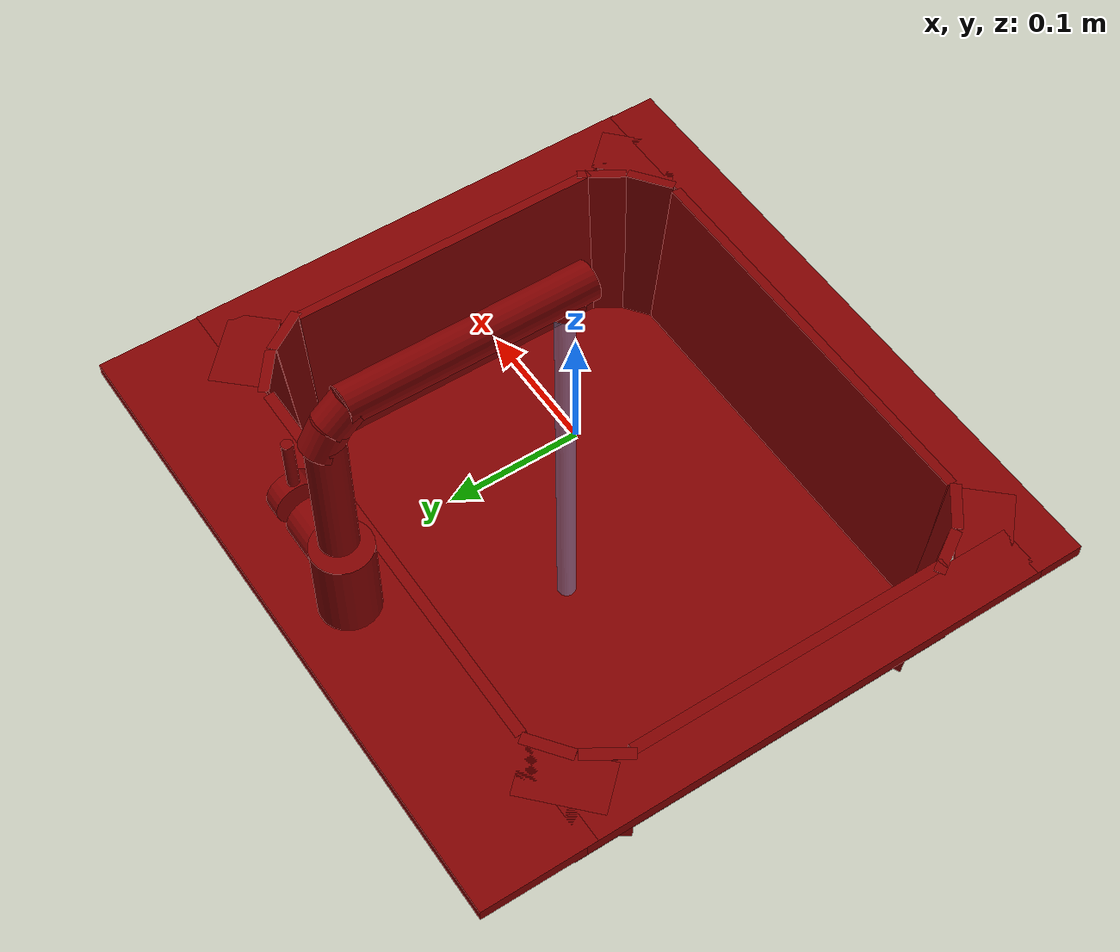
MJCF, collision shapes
<?xml version='1.0' encoding='UTF-8'?>
<mujoco model="model">
  <option timestep="0.002" gravity="0.0 0.0 -9.81"/>
  <compiler angle="radian"/>
  <asset>
    <mesh file="visuals/handle.obj" name="handle_vis"/>
    <mesh file="visuals/Body001.obj" name="Body001_vis"/>
    <mesh file="visuals/spout.obj" name="spout_vis"/>
    <texture file="visuals/T_BC001.png" name="Body001_material" type="2d"/>
    <material name="Body001_material" rgba="1 1 1 1.0" texture="Body001_material" shininess="0.4472135901451111" specular="2"/>
    <texture file="visuals/T_BC001.png" name="handle_material" type="2d"/>
    <material name="handle_material" rgba="1 1 1 1.0" texture="handle_material" shininess="0.4472135901451111" specular="1"/>
    <texture file="visuals/T_BC001.png" name="spout_material" type="2d"/>
    <material name="spout_material" rgba="1 1 1 1.0" texture="spout_material" shininess="0.4472135901451111" specular="1"/>
  </asset>
  <default>
    <default class="visual">
      <geom conaffinity="0" contype="0" group="1" type="mesh"/>
    </default>
    <default class="collision">
      <geom group="0" rgba="0.5 0 0 0.5" solimp="0.998 0.998 0.001" solref="0.001 2"/>
    </default>
    <default class="spawn">
      <geom group="0" rgba="1 1 1 0.5" contype="0" conaffinity="0"/>
      <site group="0" rgba="1 1 1 0.5"/>
    </default>
    <default class="region">
      <geom group="1" conaffinity="0" contype="0" rgba="0 1 0 0"/>
    </default>
  </default>
  <worldbody>
    <body>
      <body name="object">
        <geom mesh="Body001_vis" type="mesh" solimp="0.998 0.998 0.001" solref="0.001 1" friction="0.95 0.3 0.1" class="visual" material="Body001_material"/>
        <geom type="box" pos="-0.23326551 -0.02170394 -0.02609063" size="0.019691647961735725 0.1819543093442917 0.0049778190441429615" quat="1.0 0.0 0.0 0.0" class="collision"/>
        <geom type="box" pos="0.17659145 0.13603707 -0.08852666" size="0.01873820275068283 0.004184445831924677 0.06828301399946213" quat="0.9469715356826782 -0.0522906668484211 0.017479630187153816 -0.3165518045425415" class="collision"/>
        <geom type="box" pos="0.20680367 0.14562433 -0.02609066" size="0.031084969639778137 0.01889955997467041 0.0049778735265135765" quat="1.810242054034461e-07 -0.3682537376880646 -0.9297253489494324 -7.17016561679884e-08" class="collision"/>
        <geom type="box" pos="0.23289556 -0.02170394 -0.02609064" size="0.019691677764058113 0.1819545477628708 0.004977824632078409" quat="1.0 0.0 0.0 0.0" class="collision"/>
        <geom type="box" pos="-0.00054685 0.19522588 -0.02609064" size="0.2524087131023407 0.04307522252202034 0.00497782975435257" quat="1.0 0.0 0.0 0.0" class="collision"/>
        <geom type="box" pos="-0.00143667 0.14400281 -0.08852666" size="0.16310478746891022 0.004184445831924677 0.06828301399946213" quat="0.9984789490699768 -0.05513473600149155 0.0 0.0" class="collision"/>
        <geom type="box" pos="0.20016033 0.10974322 -0.08847781" size="0.01873820833861828 0.004184445831924677 0.06823503226041794" quat="0.8756998181343079 -0.04835504665970802 0.02648831345140934 -0.4796978235244751" class="collision"/>
        <geom type="box" pos="0.20516958 -0.02719934 -0.08852666" size="0.1264975368976593 0.004184448625892401 0.06828301399946213" quat="0.7060312628746033 -0.03898615017533302 0.038986146450042725 -0.7060312032699585" class="collision"/>
        <geom type="box" pos="-0.20512099 -0.02719934 -0.08852666" size="0.1264975368976593 0.004184448625892401 0.06828301399946213" quat="0.038986172527074814 0.7060312628746033 0.7060312032699585 0.038986172527074814" class="collision"/>
        <geom type="box" pos="-0.20011174 0.10974322 -0.08847781" size="0.01873820833861828 0.004184445831924677 0.06823503226041794" quat="0.04835505783557892 0.8756998181343079 0.4796978235244751 0.026488326489925385" class="collision"/>
        <geom type="box" pos="-0.17654284 0.13603707 -0.08852666" size="0.01873820275068283 0.004184445831924677 0.06828301399946213" quat="0.052290596067905426 0.9469715356826782 0.3165518045425415 0.017479605972766876" class="collision"/>
        <geom type="box" pos="-0.17654285 -0.18375493 -0.08852667" size="0.01873820275068283 0.004184445831924677 0.06828300654888153" quat="0.31655192375183105 -0.017479615285992622 -0.0522906519472599 0.9469715356826782" class="collision"/>
        <geom type="box" pos="-0.20011175 -0.15746112 -0.08847781" size="0.01873820275068283 0.004184445831924677 0.06823503226041794" quat="0.4796978831291199 -0.026488324627280235 -0.04835505783557892 0.8756997585296631" class="collision"/>
        <geom type="box" pos="0.20016035 -0.15746112 -0.08847780" size="0.01873820275068283 0.004184445831924677 0.06823503971099854" quat="0.026488494127988815 0.4796978235244751 -0.8756998181343079 -0.048354972153902054" class="collision"/>
        <geom type="box" pos="-0.00143667 -0.19172068 -0.08852663" size="0.16310478746891022 0.004184445831924677 0.06828304380178452" quat="1.944110294971324e-07 -1.0735084821078544e-08 -0.9984789490699768 -0.055134426802396774" class="collision"/>
        <geom type="box" pos="0.17659146 -0.18375492 -0.08852666" size="0.018738223239779472 0.004184445831924677 0.06828301399946213" quat="0.017479773610830307 0.31655168533325195 -0.946971595287323 -0.052290525287389755" class="collision"/>
        <geom type="cylinder" pos="-0.00027545 0.03384300 -0.17408001" size="0.05459705367684364 0.016054365783929825" quat="1.0 0.0 0.0 0.0" class="collision"/>
        <geom type="box" pos="-0.00093602 -0.02488668 -0.15750431" size="0.20117996633052826 0.16078191995620728 0.00048498736578039825" quat="1.0 0.0 0.0 0.0" class="collision"/>
        <geom type="cylinder" pos="-0.01916733 0.19129604 0.00715631" size="0.021768789738416672 0.03878086805343628" quat="1.0 0.0 0.0 0.0" class="collision"/>
        <geom type="cylinder" pos="0.00648358 0.19129604 0.02940734" size="0.017791669815778732 0.017488157376646996" quat="0.7071068286895752 -0.0 0.7071067690849304 0.0" class="collision"/>
        <geom type="box" pos="-0.00054685 -0.21928985 -0.02609065" size="0.2524098753929138 0.019011417403817177 0.00497785396873951" quat="1.0 0.0 0.0 0.0" class="collision"/>
        <geom type="box" pos="0.20680369 -0.19438828 -0.02609066" size="0.031084967777132988 0.018899550661444664 0.004977867007255554" quat="0.9297253489494324 0.0 0.0 0.3682537376880646" class="collision"/>
        <geom type="box" pos="-0.20600364 -0.19438828 -0.02609066" size="0.031084967777132988 0.018899550661444664 0.004977870266884565" quat="1.810242054034461e-07 0.9297253489494324 -0.3682537376880646 -7.17016561679884e-08" class="collision"/>
        <geom type="box" pos="-0.20600363 0.14562433 -0.02609066" size="0.031084971502423286 0.018899550661444664 0.004977867007255554" quat="0.3682536780834198 0.0 0.0 -0.9297253489494324" class="collision"/>
        <body name="handle">
          <joint axis="1.0 0.0 0.0" pos="0.03676817 0.19216751 0.02903756" limited="true" name="handle_temp_joint" type="hinge" range="-0.7853981633974483 0.7853981633974483" damping="0.5" frictionloss="1" armature="2"/>
          <joint axis="0.0 1.0 0.0" pos="0.03676817 0.19216751 0.02903756" limited="true" name="handle_joint" type="hinge" range="0 0.5" damping="0.5" frictionloss="1" armature="2"/>
          <geom mesh="handle_vis" type="mesh" solimp="0.998 0.998 0.001" solref="0.001 1" friction="0.95 0.3 0.1" class="visual" material="handle_material"/>
          <geom type="cylinder" pos="0.04258959 0.19210886 0.02913160" size="0.0174186360090971 0.0069199479185044765" quat="0.7064290046691895 0.0 0.7077838778495789 0.0" class="collision"/>
          <geom name="handle_main" type="cylinder" pos="0.04124236 0.19210886 0.06579839" size="0.00414998596534133 0.021215196698904037" quat="0.9999995231628418 0.0 0.0009582717902958393 0.0" class="collision"/>
        </body>
        <body name="spout">
          <joint axis="0.0 0.0 1.0" pos="-0.01554897 0.19138819 0.10896765" limited="true" name="spout_joint" range="-0.7853981633974483 0.7853981633974483" type="hinge" damping="10"/>
          <site type="cylinder" rgba="0.5 0.75 1 0.5" size="0.007027625571936369 0.167381152510643" pos="-0.01553626 0.01828695 -0.00236525" name="water"/>
          <geom mesh="spout_vis" type="mesh" solimp="0.998 0.998 0.001" solref="0.001 1" friction="0.95 0.3 0.1" class="visual" material="spout_material"/>
          <geom type="cylinder" pos="-0.01562401 0.19101101 0.10182855" size="0.01354062557220459 0.053485482931137085" quat="0.9999995231628418 0.0 -0.0009582716738805175 0.0" class="collision"/>
          <geom type="cylinder" pos="-0.01557614 0.17872526 0.17095765" size="0.01354062557220459 0.010568520985543728" quat="0.9064923524856567 0.42222118377685547 -0.0009546542423777282 -8.309984696097672e-05" class="collision"/>
          <geom type="cylinder" pos="-0.01554175 0.19011414 0.15680996" size="0.01354062557220459 0.010568520054221153" quat="0.9660386443138123 0.2583959698677063 -0.0009257207857444882 -0.00024761143140494823" class="collision"/>
          <geom type="cylinder" pos="-0.01567287 0.08878232 0.17738391" size="0.01354062557220459 0.0882638618350029" quat="0.7078102827072144 0.7064019441604614 -0.0009256413904950023 0.0002479060203768313" class="collision" name="spout_main"/>
          <geom type="cylinder" pos="-0.01559375 0.01761998 0.16692658" size="0.012687318958342075 0.005486423149704933" quat="0.9999990463256836 -0.0009957992006093264 -0.00047923254896886647 0.0008298233151435852" class="collision"/>
        </body>
        <geom class="region" name="reg_basin" type="box" pos="-7.021499999999847e-05 -0.023422545000000003 -0.087989715" size="0.164532515 0.12661307500000002 0.06737132500000001"/>
        <geom class="region" name="reg_main" type="box" pos="2.950000000112585e-07 -3.499999999545533e-08 -0.10562358999999999" size="0.25403554500000003 0.239301245 0.08551079"/>
      </body>
    </body>
  </worldbody>
  <actuator>
    <motor name="handle_joint_actuator" joint="handle_joint" gear="10"/>
    <motor name="handle_temp_joint_actuator" joint="handle_temp_joint" gear="10"/>
    <motor name="spout_joint_actuator" joint="spout_joint" gear="10"/>
  </actuator>
</mujoco>
